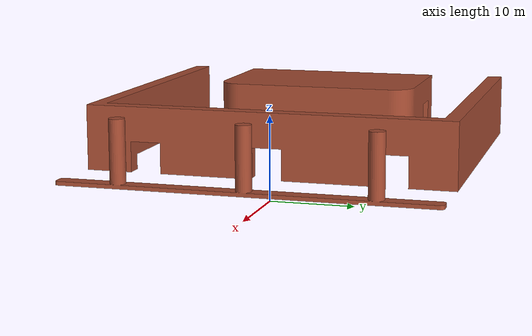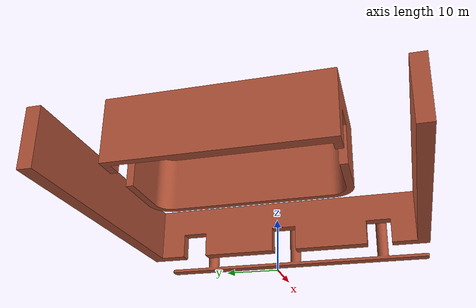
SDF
<?xml version='1.0'?>
<sdf version='1.7'>
  <model name='Hospital_Structure'>
    <link name='link_2'>
      <inertial>
        <mass>1</mass>
        <inertia>
          <ixx>0.166667</ixx>
          <ixy>0</ixy>
          <ixz>0</ixz>
          <iyy>0.166667</iyy>
          <iyz>0</iyz>
          <izz>0.166667</izz>
        </inertia>
        <pose>0 0 0 0 -0 0</pose>
      </inertial>
      <pose>0.868757 0.091977 0 0 -0 0</pose>
      <gravity>1</gravity>
      <self_collide>0</self_collide>
      <kinematic>0</kinematic>
      <enable_wind>0</enable_wind>
      <visual name='visual'>
        <pose>0 0 0 0 -0 0</pose>
        <geometry>
          <mesh>
            <uri>/home/x02wu/catkin_ws/src/jackal_simulator/jackal_gazebo/Media/models/OBJ/Intersection.obj</uri>
            <scale>1 1 1</scale>
          </mesh>
        </geometry>
        <material>
          <lighting>1</lighting>
          <script>
            <uri>file://media/materials/scripts/gazebo.material</uri>
            <name>Gazebo/Bricks</name>
          </script>
          <shader type='pixel'>
            <normal_map>__default__</normal_map>
          </shader>
          <ambient>1 1 1 1</ambient>
          <diffuse>1 1 1 1</diffuse>
          <specular>0.2 0.2 0.2 1</specular>
          <emissive>0 0 0 1</emissive>
        </material>
        <transparency>0</transparency>
        <cast_shadows>1</cast_shadows>
      </visual>
      <collision name='collision'>
        <laser_retro>0</laser_retro>
        <max_contacts>10</max_contacts>
        <pose>0 0 0 0 -0 0</pose>
        <geometry>
          <mesh>
            <uri>/home/x02wu/catkin_ws/src/jackal_simulator/jackal_gazebo/Media/models/OBJ/Intersection.obj</uri>
            <scale>1 1 1</scale>
          </mesh>
        </geometry>
        <surface>
          <friction>
            <ode>
              <mu>1</mu>
              <mu2>1</mu2>
              <fdir1>0 0 0</fdir1>
              <slip1>0</slip1>
              <slip2>0</slip2>
            </ode>
            <torsional>
              <coefficient>1</coefficient>
              <patch_radius>0</patch_radius>
              <surface_radius>0</surface_radius>
              <use_patch_radius>1</use_patch_radius>
              <ode>
                <slip>0</slip>
              </ode>
            </torsional>
          </friction>
          <bounce>
            <restitution_coefficient>0</restitution_coefficient>
            <threshold>1e+06</threshold>
          </bounce>
          <contact>
            <collide_without_contact>0</collide_without_contact>
            <collide_without_contact_bitmask>1</collide_without_contact_bitmask>
            <collide_bitmask>1</collide_bitmask>
            <ode>
              <soft_cfm>0</soft_cfm>
              <soft_erp>0.2</soft_erp>
              <kp>1e+13</kp>
              <kd>1</kd>
              <max_vel>0.01</max_vel>
              <min_depth>0</min_depth>
            </ode>
            <bullet>
              <split_impulse>1</split_impulse>
              <split_impulse_penetration_threshold>-0.01</split_impulse_penetration_threshold>
              <soft_cfm>0</soft_cfm>
              <soft_erp>0.2</soft_erp>
              <kp>1e+13</kp>
              <kd>1</kd>
            </bullet>
          </contact>
        </surface>
      </collision>
    </link>
    <link name='link_3'>
      <inertial>
        <mass>1</mass>
        <inertia>
          <ixx>0.166667</ixx>
          <ixy>0</ixy>
          <ixz>0</ixz>
          <iyy>0.166667</iyy>
          <iyz>0</iyz>
          <izz>0.166667</izz>
        </inertia>
        <pose>0 0 0 0 -0 0</pose>
      </inertial>
      <pose>-0.791003 0.121727 0 0 -0 0</pose>
      <gravity>1</gravity>
      <self_collide>0</self_collide>
      <kinematic>0</kinematic>
      <enable_wind>0</enable_wind>
      <visual name='visual'>
        <pose>0 0 0 0 -0 0</pose>
        <geometry>
          <mesh>
            <uri>/home/x02wu/catkin_ws/src/jackal_simulator/jackal_gazebo/Media/models/OBJ/Exterior.obj</uri>
            <scale>1 1 1</scale>
          </mesh>
        </geometry>
        <material>
          <lighting>1</lighting>
          <script>
            <uri>file://media/materials/scripts/gazebo.material</uri>
            <name>Gazebo/Bricks</name>
          </script>
          <shader type='pixel'>
            <normal_map>__default__</normal_map>
          </shader>
          <ambient>1 1 1 1</ambient>
          <diffuse>1 1 1 1</diffuse>
          <specular>0.2 0.2 0.2 1</specular>
          <emissive>0 0 0 1</emissive>
        </material>
        <transparency>0</transparency>
        <cast_shadows>1</cast_shadows>
      </visual>
      <collision name='collision'>
        <laser_retro>0</laser_retro>
        <max_contacts>10</max_contacts>
        <pose>0 0 0 0 -0 0</pose>
        <geometry>
          <mesh>
            <uri>/home/x02wu/catkin_ws/src/jackal_simulator/jackal_gazebo/Media/models/OBJ/Exterior.obj</uri>
            <scale>1 1 1</scale>
          </mesh>
        </geometry>
        <surface>
          <friction>
            <ode>
              <mu>1</mu>
              <mu2>1</mu2>
              <fdir1>0 0 0</fdir1>
              <slip1>0</slip1>
              <slip2>0</slip2>
            </ode>
            <torsional>
              <coefficient>1</coefficient>
              <patch_radius>0</patch_radius>
              <surface_radius>0</surface_radius>
              <use_patch_radius>1</use_patch_radius>
              <ode>
                <slip>0</slip>
              </ode>
            </torsional>
          </friction>
          <bounce>
            <restitution_coefficient>0</restitution_coefficient>
            <threshold>1e+06</threshold>
          </bounce>
          <contact>
            <collide_without_contact>0</collide_without_contact>
            <collide_without_contact_bitmask>1</collide_without_contact_bitmask>
            <collide_bitmask>1</collide_bitmask>
            <ode>
              <soft_cfm>0</soft_cfm>
              <soft_erp>0.2</soft_erp>
              <kp>1e+13</kp>
              <kd>1</kd>
              <max_vel>0.01</max_vel>
              <min_depth>0</min_depth>
            </ode>
            <bullet>
              <split_impulse>1</split_impulse>
              <split_impulse_penetration_threshold>-0.01</split_impulse_penetration_threshold>
              <soft_cfm>0</soft_cfm>
              <soft_erp>0.2</soft_erp>
              <kp>1e+13</kp>
              <kd>1</kd>
            </bullet>
          </contact>
        </surface>
      </collision>
    </link>
    <link name='link_4'>
      <inertial>
        <mass>1</mass>
        <inertia>
          <ixx>0.166667</ixx>
          <ixy>0</ixy>
          <ixz>0</ixz>
          <iyy>0.166667</iyy>
          <iyz>0</iyz>
          <izz>0.166667</izz>
        </inertia>
        <pose>0 0 0 0 -0 0</pose>
      </inertial>
      <pose>-0.077753 -0.213703 0 0 -0 0</pose>
      <gravity>1</gravity>
      <self_collide>0</self_collide>
      <kinematic>0</kinematic>
      <enable_wind>0</enable_wind>
      <visual name='visual'>
        <pose>0 0 0 0 -0 0</pose>
        <geometry>
          <mesh>
            <uri>/home/x02wu/catkin_ws/src/jackal_simulator/jackal_gazebo/Media/models/OBJ/Interior Room.obj</uri>
            <scale>1 1 1</scale>
          </mesh>
        </geometry>
        <material>
          <lighting>1</lighting>
          <script>
            <uri>file://media/materials/scripts/gazebo.material</uri>
            <name>Gazebo/Bricks</name>
          </script>
          <shader type='pixel'>
            <normal_map>__default__</normal_map>
          </shader>
          <ambient>1 1 1 1</ambient>
          <diffuse>1 1 1 1</diffuse>
          <specular>0.2 0.2 0.2 1</specular>
          <emissive>0 0 0 1</emissive>
        </material>
        <transparency>0</transparency>
        <cast_shadows>1</cast_shadows>
      </visual>
      <collision name='collision'>
        <laser_retro>0</laser_retro>
        <max_contacts>10</max_contacts>
        <pose>0 0 0 0 -0 0</pose>
        <geometry>
          <mesh>
            <uri>/home/x02wu/catkin_ws/src/jackal_simulator/jackal_gazebo/Media/models/OBJ/Interior Room.obj</uri>
            <scale>1 1 1</scale>
          </mesh>
        </geometry>
        <surface>
          <friction>
            <ode>
              <mu>1</mu>
              <mu2>1</mu2>
              <fdir1>0 0 0</fdir1>
              <slip1>0</slip1>
              <slip2>0</slip2>
            </ode>
            <torsional>
              <coefficient>1</coefficient>
              <patch_radius>0</patch_radius>
              <surface_radius>0</surface_radius>
              <use_patch_radius>1</use_patch_radius>
              <ode>
                <slip>0</slip>
              </ode>
            </torsional>
          </friction>
          <bounce>
            <restitution_coefficient>0</restitution_coefficient>
            <threshold>1e+06</threshold>
          </bounce>
          <contact>
            <collide_without_contact>0</collide_without_contact>
            <collide_without_contact_bitmask>1</collide_without_contact_bitmask>
            <collide_bitmask>1</collide_bitmask>
            <ode>
              <soft_cfm>0</soft_cfm>
              <soft_erp>0.2</soft_erp>
              <kp>1e+13</kp>
              <kd>1</kd>
              <max_vel>0.01</max_vel>
              <min_depth>0</min_depth>
            </ode>
            <bullet>
              <split_impulse>1</split_impulse>
              <split_impulse_penetration_threshold>-0.01</split_impulse_penetration_threshold>
              <soft_cfm>0</soft_cfm>
              <soft_erp>0.2</soft_erp>
              <kp>1e+13</kp>
              <kd>1</kd>
            </bullet>
          </contact>
        </surface>
      </collision>
    </link>
    <static>1</static>
    <allow_auto_disable>1</allow_auto_disable>
  </model>
</sdf>
